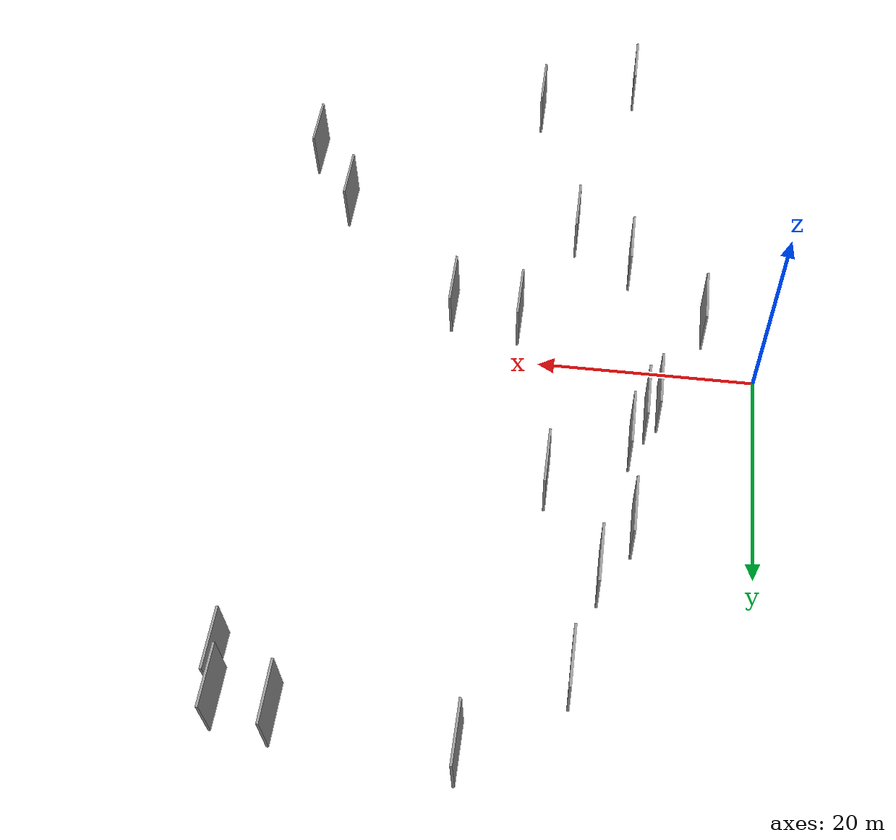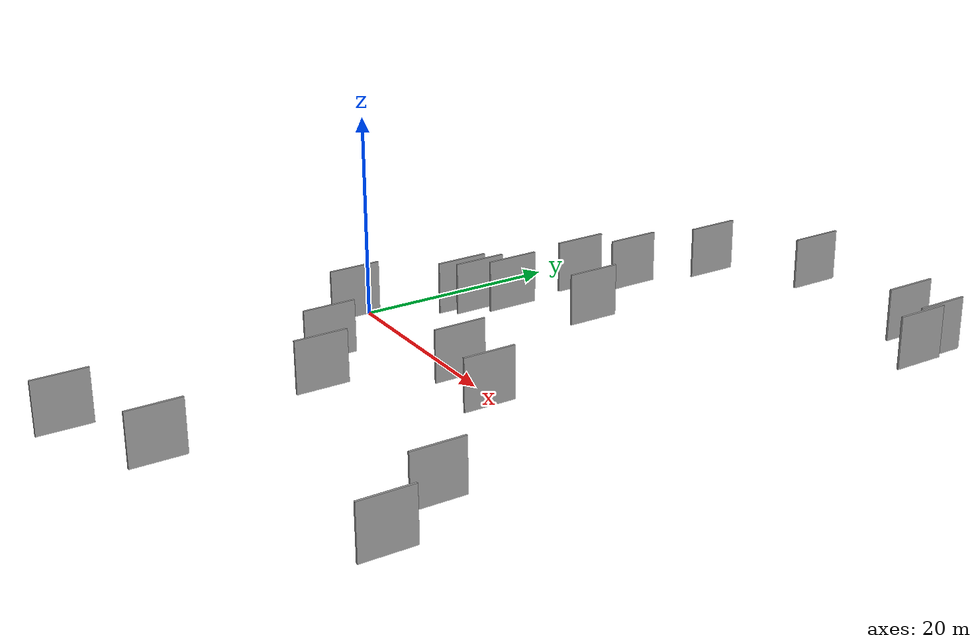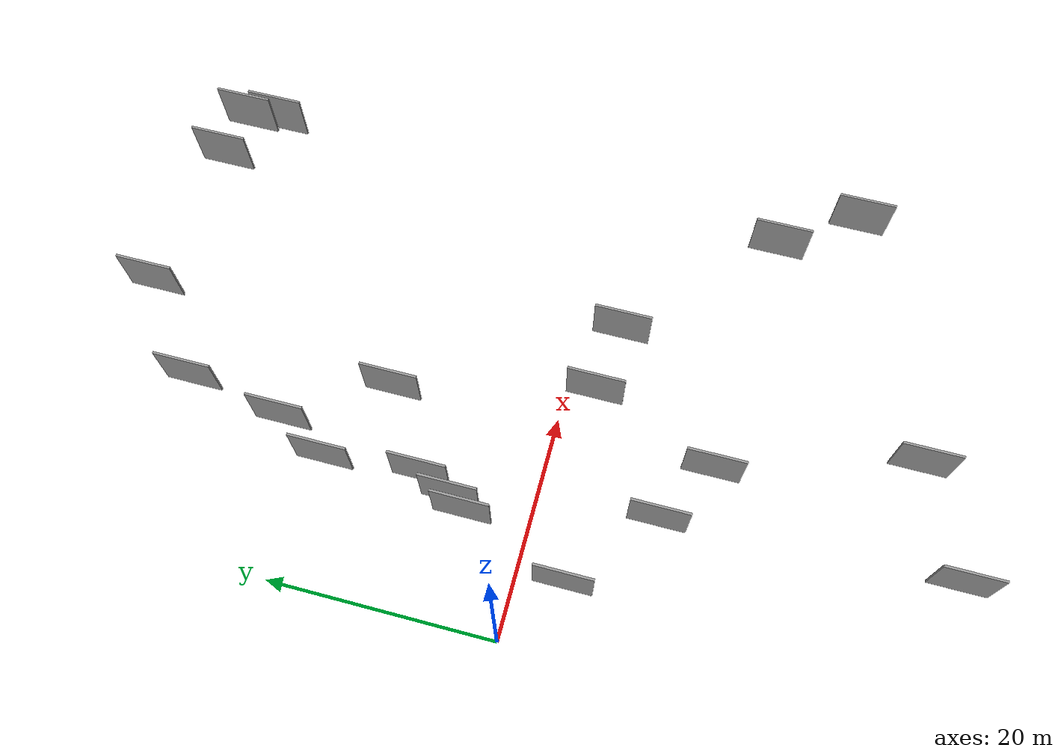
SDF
<sdf version="1.6">
 <world name="default">
  <scene>
   <sky><clouds><speed>12</speed></clouds></sky>
   <ambient>0.4 0.4 0.4 1</ambient>
   <background>0.7 0.7 0.7 1</background>
   <shadows>1</shadows>
  </scene>
  <gravity>0 0 -9.8066</gravity>
  <magnetic_field>6e-06 2.3e-05 -4.2e-05</magnetic_field>
  <physics default="0" name="default_physics" type="ode">
   <ode>
    <solver>
     <type>quick</type>
     <iters>10</iters>
     <sor>1.0</sor>
     <use_dynamic_moi_rescaling>0</use_dynamic_moi_rescaling>
    </solver>
    <constraints>
     <cfm>0</cfm>
     <erp>0.2</erp>
     <contact_max_correcting_vel>100</contact_max_correcting_vel>
     <contact_surface_layer>0.001</contact_surface_layer>
    </constraints>
   </ode>
   <max_step_size>0.004</max_step_size>
   <real_time_factor>1</real_time_factor>
   <real_time_update_rate>250</real_time_update_rate>
  </physics>
  <light name="sun" type="directional">
   <pose>0 0 10 0 0 0</pose>
   <diffuse>0.8 0.8 0.8 1</diffuse>
   <specular>0.2 0.2 0.2 1</specular>
   <attenuation>
    <range>1000</range>
    <constant>0.9</constant>
    <linear>0.01</linear>
    <quadratic>0.001</quadratic>
   </attenuation>
   <direction>-0.5 0.1 -0.9</direction>
  </light>
  <model name="grey_wall_1">
   <static>1</static>
   <pose>8.8276 5.4213 2.5 0.000000 0.000000 1.570796</pose>
   <link name="link">
    <pose>0 0 2.50 0 0 0</pose>
    <collision name="collision"><geometry><box><size>5.00 0.2 5.00</size></box></geometry></collision>
    <visual name="visual">
     <cast_shadows>0</cast_shadows>
     <geometry><box><size>5.00 0.2 5.00</size></box></geometry>
     <material>
      <script>
       <uri>model://grey_wall/materials/scripts</uri>
       <uri>model://grey_wall/materials/textures</uri>
       <name>vrc/grey_wall</name>
      </script>
     </material>
    </visual>
   </link>
  </model>
  <model name="grey_wall_2">
   <static>1</static>
   <pose>17.8921 14.2613 2.5 0.000000 0.000000 1.570796</pose>
   <link name="link">
    <pose>0 0 2.50 0 0 0</pose>
    <collision name="collision"><geometry><box><size>5.00 0.2 5.00</size></box></geometry></collision>
    <visual name="visual">
     <cast_shadows>0</cast_shadows>
     <geometry><box><size>5.00 0.2 5.00</size></box></geometry>
     <material>
      <script>
       <uri>model://grey_wall/materials/scripts</uri>
       <uri>model://grey_wall/materials/textures</uri>
       <name>vrc/grey_wall</name>
      </script>
     </material>
    </visual>
   </link>
  </model>
  <model name="grey_wall_3">
   <static>1</static>
   <pose>17.5821 -13.7339 2.5 0.000000 0.000000 1.570796</pose>
   <link name="link">
    <pose>0 0 2.50 0 0 0</pose>
    <collision name="collision"><geometry><box><size>5.00 0.2 5.00</size></box></geometry></collision>
    <visual name="visual">
     <cast_shadows>0</cast_shadows>
     <geometry><box><size>5.00 0.2 5.00</size></box></geometry>
     <material>
      <script>
       <uri>model://grey_wall/materials/scripts</uri>
       <uri>model://grey_wall/materials/textures</uri>
       <name>vrc/grey_wall</name>
      </script>
     </material>
    </visual>
   </link>
  </model>
  <model name="grey_wall_4">
   <static>1</static>
   <pose>12.2227 -10.2573 2.5 0.000000 0.000000 1.570796</pose>
   <link name="link">
    <pose>0 0 2.50 0 0 0</pose>
    <collision name="collision"><geometry><box><size>5.00 0.2 5.00</size></box></geometry></collision>
    <visual name="visual">
     <cast_shadows>0</cast_shadows>
     <geometry><box><size>5.00 0.2 5.00</size></box></geometry>
     <material>
      <script>
       <uri>model://grey_wall/materials/scripts</uri>
       <uri>model://grey_wall/materials/textures</uri>
       <name>vrc/grey_wall</name>
      </script>
     </material>
    </visual>
   </link>
  </model>
  <model name="grey_wall_5">
   <static>1</static>
   <pose>21.9663 -2.6379 2.5 0.000000 0.000000 1.570796</pose>
   <link name="link">
    <pose>0 0 2.50 0 0 0</pose>
    <collision name="collision"><geometry><box><size>5.00 0.2 5.00</size></box></geometry></collision>
    <visual name="visual">
     <cast_shadows>0</cast_shadows>
     <geometry><box><size>5.00 0.2 5.00</size></box></geometry>
     <material>
      <script>
       <uri>model://grey_wall/materials/scripts</uri>
       <uri>model://grey_wall/materials/textures</uri>
       <name>vrc/grey_wall</name>
      </script>
     </material>
    </visual>
   </link>
  </model>
  <model name="grey_wall_6">
   <static>1</static>
   <pose>14.3818 31.2126 2.5 0.000000 0.000000 1.570796</pose>
   <link name="link">
    <pose>0 0 2.50 0 0 0</pose>
    <collision name="collision"><geometry><box><size>5.00 0.2 5.00</size></box></geometry></collision>
    <visual name="visual">
     <cast_shadows>0</cast_shadows>
     <geometry><box><size>5.00 0.2 5.00</size></box></geometry>
     <material>
      <script>
       <uri>model://grey_wall/materials/scripts</uri>
       <uri>model://grey_wall/materials/textures</uri>
       <name>vrc/grey_wall</name>
      </script>
     </material>
    </visual>
   </link>
  </model>
  <model name="grey_wall_7">
   <static>1</static>
   <pose>5.1675 -4.0686 2.5 0.000000 0.000000 1.570796</pose>
   <link name="link">
    <pose>0 0 2.50 0 0 0</pose>
    <collision name="collision"><geometry><box><size>5.00 0.2 5.00</size></box></geometry></collision>
    <visual name="visual">
     <cast_shadows>0</cast_shadows>
     <geometry><box><size>5.00 0.2 5.00</size></box></geometry>
     <material>
      <script>
       <uri>model://grey_wall/materials/scripts</uri>
       <uri>model://grey_wall/materials/textures</uri>
       <name>vrc/grey_wall</name>
      </script>
     </material>
    </visual>
   </link>
  </model>
  <model name="grey_wall_8">
   <static>1</static>
   <pose>41.5049 32.8986 2.5 0.000000 0.000000 1.570796</pose>
   <link name="link">
    <pose>0 0 2.50 0 0 0</pose>
    <collision name="collision"><geometry><box><size>5.00 0.2 5.00</size></box></geometry></collision>
    <visual name="visual">
     <cast_shadows>0</cast_shadows>
     <geometry><box><size>5.00 0.2 5.00</size></box></geometry>
     <material>
      <script>
       <uri>model://grey_wall/materials/scripts</uri>
       <uri>model://grey_wall/materials/textures</uri>
       <name>vrc/grey_wall</name>
      </script>
     </material>
    </visual>
   </link>
  </model>
  <model name="grey_wall_9">
   <static>1</static>
   <pose>9.8714 6.7481 2.5 0.000000 0.000000 1.570796</pose>
   <link name="link">
    <pose>0 0 2.50 0 0 0</pose>
    <collision name="collision"><geometry><box><size>5.00 0.2 5.00</size></box></geometry></collision>
    <visual name="visual">
     <cast_shadows>0</cast_shadows>
     <geometry><box><size>5.00 0.2 5.00</size></box></geometry>
     <material>
      <script>
       <uri>model://grey_wall/materials/scripts</uri>
       <uri>model://grey_wall/materials/textures</uri>
       <name>vrc/grey_wall</name>
      </script>
     </material>
    </visual>
   </link>
  </model>
  <model name="grey_wall_10">
   <static>1</static>
   <pose>22.2172 37.8734 2.5 0.000000 0.000000 1.570796</pose>
   <link name="link">
    <pose>0 0 2.50 0 0 0</pose>
    <collision name="collision"><geometry><box><size>5.00 0.2 5.00</size></box></geometry></collision>
    <visual name="visual">
     <cast_shadows>0</cast_shadows>
     <geometry><box><size>5.00 0.2 5.00</size></box></geometry>
     <material>
      <script>
       <uri>model://grey_wall/materials/scripts</uri>
       <uri>model://grey_wall/materials/textures</uri>
       <name>vrc/grey_wall</name>
      </script>
     </material>
    </visual>
   </link>
  </model>
  <model name="grey_wall_11">
   <static>1</static>
   <pose>36.4158 36.4774 2.5 0.000000 0.000000 1.570796</pose>
   <link name="link">
    <pose>0 0 2.50 0 0 0</pose>
    <collision name="collision"><geometry><box><size>5.00 0.2 5.00</size></box></geometry></collision>
    <visual name="visual">
     <cast_shadows>0</cast_shadows>
     <geometry><box><size>5.00 0.2 5.00</size></box></geometry>
     <material>
      <script>
       <uri>model://grey_wall/materials/scripts</uri>
       <uri>model://grey_wall/materials/textures</uri>
       <name>vrc/grey_wall</name>
      </script>
     </material>
    </visual>
   </link>
  </model>
  <model name="grey_wall_12">
   <static>1</static>
   <pose>13.1904 -34.9031 2.5 0.000000 0.000000 1.570796</pose>
   <link name="link">
    <pose>0 0 2.50 0 0 0</pose>
    <collision name="collision"><geometry><box><size>5.00 0.2 5.00</size></box></geometry></collision>
    <visual name="visual">
     <cast_shadows>0</cast_shadows>
     <geometry><box><size>5.00 0.2 5.00</size></box></geometry>
     <material>
      <script>
       <uri>model://grey_wall/materials/scripts</uri>
       <uri>model://grey_wall/materials/textures</uri>
       <name>vrc/grey_wall</name>
      </script>
     </material>
    </visual>
   </link>
  </model>
  <model name="grey_wall_13">
   <static>1</static>
   <pose>12.8567 22.5137 2.5 0.000000 0.000000 1.570796</pose>
   <link name="link">
    <pose>0 0 2.50 0 0 0</pose>
    <collision name="collision"><geometry><box><size>5.00 0.2 5.00</size></box></geometry></collision>
    <visual name="visual">
     <cast_shadows>0</cast_shadows>
     <geometry><box><size>5.00 0.2 5.00</size></box></geometry>
     <material>
      <script>
       <uri>model://grey_wall/materials/scripts</uri>
       <uri>model://grey_wall/materials/textures</uri>
       <name>vrc/grey_wall</name>
      </script>
     </material>
    </visual>
   </link>
  </model>
  <model name="grey_wall_14">
   <static>1</static>
   <pose>44.4878 -22.0236 2.5 0.000000 0.000000 1.570796</pose>
   <link name="link">
    <pose>0 0 2.50 0 0 0</pose>
    <collision name="collision"><geometry><box><size>5.00 0.2 5.00</size></box></geometry></collision>
    <visual name="visual">
     <cast_shadows>0</cast_shadows>
     <geometry><box><size>5.00 0.2 5.00</size></box></geometry>
     <material>
      <script>
       <uri>model://grey_wall/materials/scripts</uri>
       <uri>model://grey_wall/materials/textures</uri>
       <name>vrc/grey_wall</name>
      </script>
     </material>
    </visual>
   </link>
  </model>
  <model name="grey_wall_15">
   <static>1</static>
   <pose>41.0470 35.7467 2.5 0.000000 0.000000 1.570796</pose>
   <link name="link">
    <pose>0 0 2.50 0 0 0</pose>
    <collision name="collision"><geometry><box><size>5.00 0.2 5.00</size></box></geometry></collision>
    <visual name="visual">
     <cast_shadows>0</cast_shadows>
     <geometry><box><size>5.00 0.2 5.00</size></box></geometry>
     <material>
      <script>
       <uri>model://grey_wall/materials/scripts</uri>
       <uri>model://grey_wall/materials/textures</uri>
       <name>vrc/grey_wall</name>
      </script>
     </material>
    </visual>
   </link>
  </model>
  <model name="grey_wall_16">
   <static>1</static>
   <pose>11.0481 9.6721 2.5 0.000000 0.000000 1.570796</pose>
   <link name="link">
    <pose>0 0 2.50 0 0 0</pose>
    <collision name="collision"><geometry><box><size>5.00 0.2 5.00</size></box></geometry></collision>
    <visual name="visual">
     <cast_shadows>0</cast_shadows>
     <geometry><box><size>5.00 0.2 5.00</size></box></geometry>
     <material>
      <script>
       <uri>model://grey_wall/materials/scripts</uri>
       <uri>model://grey_wall/materials/textures</uri>
       <name>vrc/grey_wall</name>
      </script>
     </material>
    </visual>
   </link>
  </model>
  <model name="grey_wall_17">
   <static>1</static>
   <pose>40.0906 -15.2949 2.5 0.000000 0.000000 1.570796</pose>
   <link name="link">
    <pose>0 0 2.50 0 0 0</pose>
    <collision name="collision"><geometry><box><size>5.00 0.2 5.00</size></box></geometry></collision>
    <visual name="visual">
     <cast_shadows>0</cast_shadows>
     <geometry><box><size>5.00 0.2 5.00</size></box></geometry>
     <material>
      <script>
       <uri>model://grey_wall/materials/scripts</uri>
       <uri>model://grey_wall/materials/textures</uri>
       <name>vrc/grey_wall</name>
      </script>
     </material>
    </visual>
   </link>
  </model>
  <model name="grey_wall_18">
   <static>1</static>
   <pose>10.3954 17.9312 2.5 0.000000 0.000000 1.570796</pose>
   <link name="link">
    <pose>0 0 2.50 0 0 0</pose>
    <collision name="collision"><geometry><box><size>5.00 0.2 5.00</size></box></geometry></collision>
    <visual name="visual">
     <cast_shadows>0</cast_shadows>
     <geometry><box><size>5.00 0.2 5.00</size></box></geometry>
     <material>
      <script>
       <uri>model://grey_wall/materials/scripts</uri>
       <uri>model://grey_wall/materials/textures</uri>
       <name>vrc/grey_wall</name>
      </script>
     </material>
    </visual>
   </link>
  </model>
  <model name="grey_wall_19">
   <static>1</static>
   <pose>28.2029 -3.4985 2.5 0.000000 0.000000 1.570796</pose>
   <link name="link">
    <pose>0 0 2.50 0 0 0</pose>
    <collision name="collision"><geometry><box><size>5.00 0.2 5.00</size></box></geometry></collision>
    <visual name="visual">
     <cast_shadows>0</cast_shadows>
     <geometry><box><size>5.00 0.2 5.00</size></box></geometry>
     <material>
      <script>
       <uri>model://grey_wall/materials/scripts</uri>
       <uri>model://grey_wall/materials/textures</uri>
       <name>vrc/grey_wall</name>
      </script>
     </material>
    </visual>
   </link>
  </model>
  <model name="grey_wall_20">
   <static>1</static>
   <pose>22.5145 -30.5351 2.5 0.000000 0.000000 1.570796</pose>
   <link name="link">
    <pose>0 0 2.50 0 0 0</pose>
    <collision name="collision"><geometry><box><size>5.00 0.2 5.00</size></box></geometry></collision>
    <visual name="visual">
     <cast_shadows>0</cast_shadows>
     <geometry><box><size>5.00 0.2 5.00</size></box></geometry>
     <material>
      <script>
       <uri>model://grey_wall/materials/scripts</uri>
       <uri>model://grey_wall/materials/textures</uri>
       <name>vrc/grey_wall</name>
      </script>
     </material>
    </visual>
   </link>
  </model>
 </world>
</sdf>
